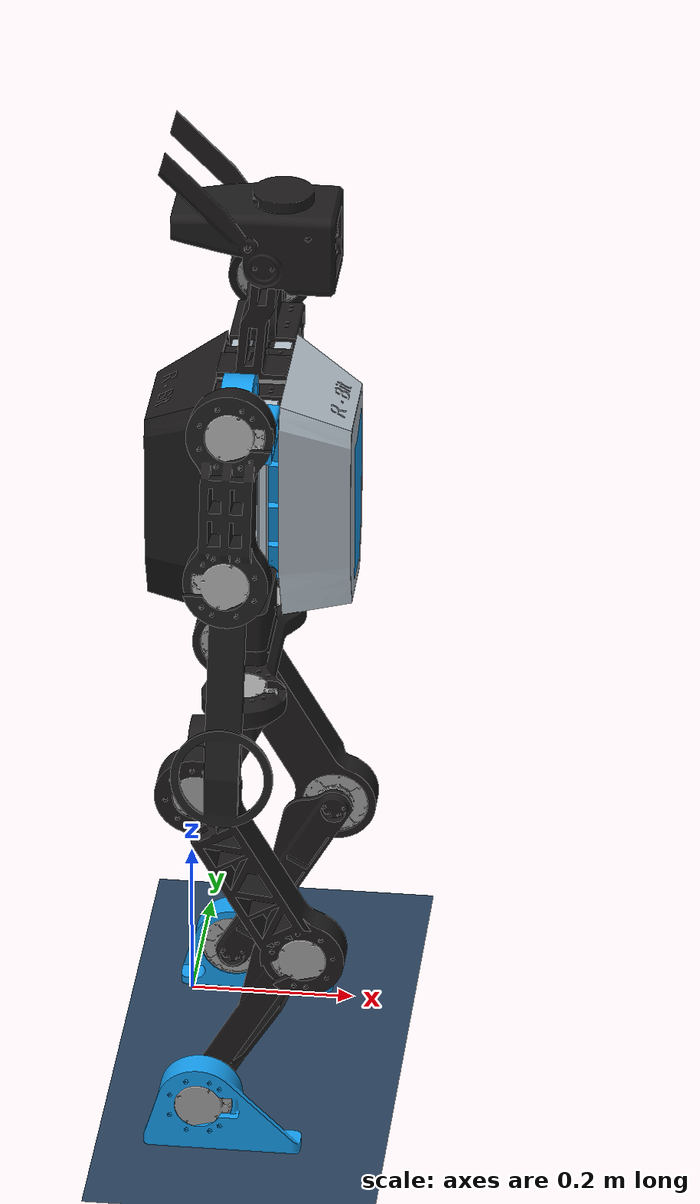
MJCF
<mujoco model="scene">
    <include file="robot.xml"/>

    <visual>
        <headlight diffuse="0.6 0.6 0.6" ambient="0.3 0.3 0.3" specular="0 0 0" />
        <rgba haze="0.15 0.25 0.35 1" />
        <global azimuth="160" elevation="-20" />
    </visual>

    <asset>
        <texture type="skybox" builtin="gradient" rgb1="0.3 0.5 0.7" rgb2="0 0 0" width="512"
            height="3072" />
        <texture type="2d" name="groundplane" builtin="checker" mark="edge" rgb1="0.2 0.3 0.4"
            rgb2="0.1 0.2 0.3"
            markrgb="0.8 0.8 0.8" width="300" height="300" />
        <material name="groundplane" texture="groundplane" texuniform="true" texrepeat="5 5"
            reflectance="0.2" />
    </asset>

    <worldbody>
        <light pos="0 0 3.5" dir="0 0 -1" directional="true" />
        <geom name="floor" size="0 0 0.05" pos="0 0 0" type="plane" material="groundplane" />
    </worldbody>
</mujoco>

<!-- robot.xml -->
<!-- Generated using onshape-to-robot -->
<!-- Onshape document_id: ed03cf36064484f045f11029 / workspace_id: 3c0f314be41cfc1e0a6a4e37 -->
<mujoco model="rabbit_humanoid">
  <compiler angle="radian" meshdir="assets" autolimits="true"/>
  <default>
    <default class="rabbit_humanoid">
      <joint frictionloss="0.1" armature="0.005"/>
      <position kp="20" dampratio="1"/>
      <default class="visual">
        <geom type="mesh" contype="0" conaffinity="0" group="2"/>
      </default>
      <default class="collision">
        <geom group="3"/>
      </default>
    </default>
  </default>
  <worldbody>
  <camera name="nice_robot_view" pos="2.476 -2.358 1.174" xyaxes="0.685 0.728 0.000 -0.211 0.199 0.957"/>
    <!-- Link torso -->
    <body name="torso" pos="0 0 0" quat="1 0 0 0" childclass="rabbit_humanoid">
      <freejoint name="torso_freejoint"/>
      <inertial pos="0.102186 -0.163702 0.929631" mass="3.5" fullinertia="0.138287 0.0999829 0.0488135 9.85582e-05 -0.00364902 0.000208347"/>
      <!-- Part rbitbase -->
      <geom type="mesh" class="visual" pos="-0.101015 -0.161473 0.625697" quat="0.70701 0 0 0.707203" mesh="rbitbase" material="rbitbase_material"/>
      <geom type="mesh" class="collision" pos="-0.101015 -0.161473 0.625697" quat="0.70701 0 0 0.707203" mesh="rbitbase" material="rbitbase_material"/>
      <!-- Part rbitbase_2 -->
      <geom type="mesh" class="visual" pos="-0.0976243 -0.166266 0.626605" quat="0.70701 0 0 0.707203" mesh="rbitbase__2" material="rbitbase__2_material"/>
      <geom type="mesh" class="collision" pos="-0.0976243 -0.166266 0.626605" quat="0.70701 0 0 0.707203" mesh="rbitbase__2" material="rbitbase__2_material"/>
      <!-- Part rbitbase_3 -->
      <geom type="mesh" class="visual" pos="-0.101015 -0.161473 0.625697" quat="0.70701 0 0 0.707203" mesh="rbitbase__3" material="rbitbase__3_material"/>
      <geom type="mesh" class="collision" pos="-0.101015 -0.161473 0.625697" quat="0.70701 0 0 0.707203" mesh="rbitbase__3" material="rbitbase__3_material"/>
      <!-- Part rbitbase_4 -->
      <geom type="mesh" class="visual" pos="-0.101016 -0.1578 0.62588" quat="0.70701 0 0 0.707203" mesh="rbitbase__4" material="rbitbase__4_material"/>
      <geom type="mesh" class="collision" pos="-0.101016 -0.1578 0.62588" quat="0.70701 0 0 0.707203" mesh="rbitbase__4" material="rbitbase__4_material"/>
      <!-- Part rbitbase_5 -->
      <geom type="mesh" class="visual" pos="-0.10114 -0.161473 0.607072" quat="0.70701 0 0 0.707203" mesh="rbitbase__5" material="rbitbase__5_material"/>
      <geom type="mesh" class="collision" pos="-0.10114 -0.161473 0.607072" quat="0.70701 0 0 0.707203" mesh="rbitbase__5" material="rbitbase__5_material"/>
      <!-- Part rbitbase_6 -->
      <geom type="mesh" class="visual" pos="-0.101166 -0.157903 0.636835" quat="0.70701 0 0 0.707203" mesh="rbitbase__6" material="rbitbase__6_material"/>
      <geom type="mesh" class="collision" pos="-0.101166 -0.157903 0.636835" quat="0.70701 0 0 0.707203" mesh="rbitbase__6" material="rbitbase__6_material"/>
      <!-- Part rbitbase_7 -->
      <geom type="mesh" class="visual" pos="-0.0972992 -0.166545 0.627325" quat="0.70701 0 0 0.707203" mesh="rbitbase__7" material="rbitbase__7_material"/>
      <geom type="mesh" class="collision" pos="-0.0972992 -0.166545 0.627325" quat="0.70701 0 0 0.707203" mesh="rbitbase__7" material="rbitbase__7_material"/>
      <!-- Part rbitbase_8 -->
      <geom type="mesh" class="visual" pos="-0.101016 -0.158099 0.625697" quat="0.70701 0 0 0.707203" mesh="rbitbase__8" material="rbitbase__8_material"/>
      <geom type="mesh" class="collision" pos="-0.101016 -0.158099 0.625697" quat="0.70701 0 0 0.707203" mesh="rbitbase__8" material="rbitbase__8_material"/>
      <!-- Part rbitbase_9 -->
      <geom type="mesh" class="visual" pos="-0.101015 -0.161473 0.626216" quat="0.70701 0 0 0.707203" mesh="rbitbase__9" material="rbitbase__9_material"/>
      <geom type="mesh" class="collision" pos="-0.101015 -0.161473 0.626216" quat="0.70701 0 0 0.707203" mesh="rbitbase__9" material="rbitbase__9_material"/>
      <!-- Part rbitbase_10 -->
      <geom type="mesh" class="visual" pos="-0.0976243 -0.166266 0.626605" quat="0.70701 0 0 0.707203" mesh="rbitbase__10" material="rbitbase__10_material"/>
      <geom type="mesh" class="collision" pos="-0.0976243 -0.166266 0.626605" quat="0.70701 0 0 0.707203" mesh="rbitbase__10" material="rbitbase__10_material"/>
      <!-- Part rbitbase_11 -->
      <geom type="mesh" class="visual" pos="-0.100514 -0.165723 0.656947" quat="0.70701 0 0 0.707203" mesh="rbitbase__11" material="rbitbase__11_material"/>
      <geom type="mesh" class="collision" pos="-0.100514 -0.165723 0.656947" quat="0.70701 0 0 0.707203" mesh="rbitbase__11" material="rbitbase__11_material"/>
      <!-- Part rbitbase_12 -->
      <geom type="mesh" class="visual" pos="-0.10134 -0.161473 0.606772" quat="0.70701 0 0 0.707203" mesh="rbitbase__12" material="rbitbase__12_material"/>
      <geom type="mesh" class="collision" pos="-0.10134 -0.161473 0.606772" quat="0.70701 0 0 0.707203" mesh="rbitbase__12" material="rbitbase__12_material"/>
      <!-- Part rbitbase_13 -->
      <geom type="mesh" class="visual" pos="-0.101015 -0.161473 0.625697" quat="0.70701 0 0 0.707203" mesh="rbitbase__13" material="rbitbase__13_material"/>
      <geom type="mesh" class="collision" pos="-0.101015 -0.161473 0.625697" quat="0.70701 0 0 0.707203" mesh="rbitbase__13" material="rbitbase__13_material"/>
      <!-- Part rbitbase_14 -->
      <geom type="mesh" class="visual" pos="-0.0952993 -0.166118 0.627029" quat="0.70701 0 0 0.707203" mesh="rbitbase__14" material="rbitbase__14_material"/>
      <geom type="mesh" class="collision" pos="-0.0952993 -0.166118 0.627029" quat="0.70701 0 0 0.707203" mesh="rbitbase__14" material="rbitbase__14_material"/>
      <!-- Part rbitbase_15 -->
      <geom type="mesh" class="visual" pos="-0.0996243 -0.166119 0.627029" quat="0.70701 0 0 0.707203" mesh="rbitbase__15" material="rbitbase__15_material"/>
      <geom type="mesh" class="collision" pos="-0.0996243 -0.166119 0.627029" quat="0.70701 0 0 0.707203" mesh="rbitbase__15" material="rbitbase__15_material"/>
      <!-- Part rbitbase_16 -->
      <geom type="mesh" class="visual" pos="-0.101072 -0.160679 0.631341" quat="0.70701 0 0 0.707203" mesh="rbitbase__16" material="rbitbase__16_material"/>
      <geom type="mesh" class="collision" pos="-0.101072 -0.160679 0.631341" quat="0.70701 0 0 0.707203" mesh="rbitbase__16" material="rbitbase__16_material"/>
      <!-- Part rbitbase_17 -->
      <geom type="mesh" class="visual" pos="-0.101015 -0.161473 0.625697" quat="0.70701 0 0 0.707203" mesh="rbitbase__17" material="rbitbase__17_material"/>
      <geom type="mesh" class="collision" pos="-0.101015 -0.161473 0.625697" quat="0.70701 0 0 0.707203" mesh="rbitbase__17" material="rbitbase__17_material"/>
      <!-- Part rbitbase_18 -->
      <geom type="mesh" class="visual" pos="-0.10114 -0.161473 0.608072" quat="0.70701 0 0 0.707203" mesh="rbitbase__18" material="rbitbase__18_material"/>
      <geom type="mesh" class="collision" pos="-0.10114 -0.161473 0.608072" quat="0.70701 0 0 0.707203" mesh="rbitbase__18" material="rbitbase__18_material"/>
      <!-- Part rbitbase_19 -->
      <geom type="mesh" class="visual" pos="-0.151016 -0.158113 0.625697" quat="0.70701 0 0 0.707203" mesh="rbitbase__8" material="rbitbase__8_material"/>
      <geom type="mesh" class="collision" pos="-0.151016 -0.158113 0.625697" quat="0.70701 0 0 0.707203" mesh="rbitbase__8" material="rbitbase__8_material"/>
      <!-- Part rbitbase_20 -->
      <geom type="mesh" class="visual" pos="-0.0972992 -0.166545 0.627325" quat="0.70701 0 0 0.707203" mesh="rbitbase__19" material="rbitbase__19_material"/>
      <geom type="mesh" class="collision" pos="-0.0972992 -0.166545 0.627325" quat="0.70701 0 0 0.707203" mesh="rbitbase__19" material="rbitbase__19_material"/>
      <!-- Part head -->
      <geom type="mesh" class="visual" pos="-0.0995535 -0.643988 0.587228" quat="0.70701 0 0 0.707203" mesh="head" material="head_material"/>
      <geom type="mesh" class="collision" pos="-0.0995535 -0.643988 0.587228" quat="0.70701 0 0 0.707203" mesh="head" material="head_material"/>
      <!-- Part rbitbase_21 -->
      <geom type="mesh" class="visual" pos="-0.100514 -0.165723 0.636447" quat="0.70701 0 0 0.707203" mesh="rbitbase__20" material="rbitbase__20_material"/>
      <geom type="mesh" class="collision" pos="-0.100514 -0.165723 0.636447" quat="0.70701 0 0 0.707203" mesh="rbitbase__20" material="rbitbase__20_material"/>
      <!-- Link left_hip -->
      <body name="left_hip" pos="0.0969088 -0.057999 0.59873" quat="0 -0.70701 -0.707203 0">
        <!-- Joint from torso to left_hip -->
        <joint axis="0 0 1" name="LeftHipYaw" type="hinge" range="-3.14 3.14"/>
        <inertial pos="-0.000224789 -0.0185205 0.0639871" mass="0.851126" fullinertia="0.00189776 0.00173246 0.000805442 -2.51413e-07 -5.68852e-07 0.000591029"/>
        <!-- Part rbitbase_22 -->
        <geom type="mesh" class="visual" pos="-0.102946 -0.197892 -0.00886706" quat="0 1 0.00013676 -0" mesh="rbitbase__21" material="rbitbase__21_material"/>
        <geom type="mesh" class="collision" pos="-0.102946 -0.197892 -0.00886706" quat="0 1 0.00013676 -0" mesh="rbitbase__21" material="rbitbase__21_material"/>
        <!-- Part rbitbase_23 -->
        <geom type="mesh" class="visual" pos="-0.102946 -0.198028 -0.006" quat="0 1 0.00013676 -0" mesh="rbitbase__22" material="rbitbase__22_material"/>
        <geom type="mesh" class="collision" pos="-0.102946 -0.198028 -0.006" quat="0 1 0.00013676 -0" mesh="rbitbase__22" material="rbitbase__22_material"/>
        <!-- Part rbitbase_24 -->
        <geom type="mesh" class="visual" pos="-0.102366 -0.196105 -0.00634276" quat="0 1 0.00013676 -0" mesh="rbitbase__23" material="rbitbase__23_material"/>
        <geom type="mesh" class="collision" pos="-0.102366 -0.196105 -0.00634276" quat="0 1 0.00013676 -0" mesh="rbitbase__23" material="rbitbase__23_material"/>
        <!-- Link left_hip_bottom -->
        <body name="left_hip_bottom" pos="1.62586e-05 -0.063 0.102467" quat="0.707107 0.707107 9.67041e-05 9.67041e-05">
          <!-- Joint from left_hip to left_hip_bottom -->
          <joint axis="0 0 1" name="LeftHipRoll" type="hinge" range="-3.14 3.14"/>
          <inertial pos="0.0566615 -0.000483218 -0.0177758" mass="0.498183" fullinertia="0.000403738 0.00062857 0.000698766 -7.64066e-06 1.09494e-05 2.26764e-06"/>
          <!-- Part rbitbase_25 -->
          <geom type="mesh" class="visual" pos="-0.10342 -0.108343 0.135077" quat="0.707107 0.707107 -0 -0" mesh="rbitbase__24" material="rbitbase__24_material"/>
          <geom type="mesh" class="collision" pos="-0.10342 -0.108343 0.135077" quat="0.707107 0.707107 -0 -0" mesh="rbitbase__24" material="rbitbase__24_material"/>
          <!-- Part rbitbase_26 -->
          <geom type="mesh" class="visual" pos="-0.1 -0.108 0.134085" quat="0.707107 0.707107 -0 -0" mesh="rbitbase__25" material="rbitbase__25_material"/>
          <geom type="mesh" class="collision" pos="-0.1 -0.108 0.134085" quat="0.707107 0.707107 -0 -0" mesh="rbitbase__25" material="rbitbase__25_material"/>
          <!-- Link left_thigh -->
          <body name="left_thigh" pos="0.094 0 -0.0179152" quat="0.707107 0 -0.707107 -0">
            <!-- Joint from left_hip_bottom to left_thigh -->
            <joint axis="0 0 1" name="LeftHipPitch" type="hinge" range="-3.14 3.14"/>
            <inertial pos="-0.0923765 0.159526 0.0180697" mass="0.841915" fullinertia="0.00545214 0.00225244 0.00740326 0.00286457 0.000142736 -0.000249601"/>
            <!-- Part rbitbase_27 -->
            <geom type="mesh" class="visual" pos="0.186998 -0.0184243 0.193" quat="0.612372 0.353553 0.612372 -0.353553" mesh="rbitbase__26" material="rbitbase__26_material"/>
            <geom type="mesh" class="collision" pos="0.186998 -0.0184243 0.193" quat="0.612372 0.353553 0.612372 -0.353553" mesh="rbitbase__26" material="rbitbase__26_material"/>
            <!-- Part rbitbase_28 -->
            <geom type="mesh" class="visual" pos="0.187024 -0.018549 0.19342" quat="0.612372 0.353553 0.612372 -0.353553" mesh="rbitbase__27" material="rbitbase__27_material"/>
            <geom type="mesh" class="collision" pos="0.187024 -0.018549 0.19342" quat="0.612372 0.353553 0.612372 -0.353553" mesh="rbitbase__27" material="rbitbase__27_material"/>
            <!-- Link left_shank -->
            <body name="left_shank" pos="-0.125 0.216506 0.039" quat="0 -0.965926 0.258819 0">
              <!-- Joint from left_thigh to left_shank -->
              <joint axis="0 0 -1" name="LeftKnee" type="hinge" range="-3.14 3.14"/>
              <inertial pos="0.00112005 -0.117503 -0.00374671" mass="0.119522" fullinertia="0.000748479 3.58231e-05 0.000767785 -2.12649e-05 3.60749e-06 -3.06652e-06"/>
              <!-- Part rbitbase_29 -->
              <geom type="mesh" class="visual" pos="0.153793 0.359721 -0.15142" quat="0.5 -0.5 -0.5 -0.5" mesh="rbitbase__28" material="rbitbase__28_material"/>
              <geom type="mesh" class="collision" pos="0.153793 0.359721 -0.15142" quat="0.5 -0.5 -0.5 -0.5" mesh="rbitbase__28" material="rbitbase__28_material"/>
              <!-- Link left_foot -->
              <body name="left_foot" pos="0 -0.25 0" quat="0 1 0 0">
                <!-- Joint from left_shank to left_foot -->
                <joint axis="0 0 1" name="LeftAnkle" type="hinge" range="-3.14 3.14"/>
                <inertial pos="-0.00800841 0.00460468 -0.0178569" mass="0.584071" fullinertia="0.000453964 0.000703847 0.00103504 -9.94341e-07 -2.78871e-05 9.76065e-06"/>
                <!-- Part rbitbase_30 -->
                <geom type="mesh" class="visual" pos="0.440513 -0.447674 0.15442" quat="0.612372 0.353553 0.612372 -0.353553" mesh="rbitbase__29" material="rbitbase__29_material"/>
                <!-- Part rbitbase_31 -->
                <geom type="mesh" class="visual" pos="0.439884 -0.447638 0.154" quat="0.612372 0.353553 0.612372 -0.353553" mesh="rbitbase__30" material="rbitbase__30_material"/>
                <geom class="collision" name="left_foot_collision" type="cylinder" size="0.025 0.095" pos="-0.045981 0.019641 0.0" euler="1.5708 -1.0472 -1.0472" friction="1.0 0.005 0.0001"/>
                <site name="left_foot_site" pos="-0.045981 0.019641 0.0" size="0.025 0.095" type="cylinder" euler="1.5708 -1.0472 -1.0472" rgba="0 1 0 0"/>
              </body>
            </body>
          </body>
        </body>
      </body>
      <!-- Link right_hip -->
      <body name="right_hip" pos="0.0969668 -0.269999 0.59873" quat="0 -0.70701 -0.707203 0">
        <!-- Joint from torso to right_hip -->
        <joint axis="0 0 1" name="RightHipYaw" type="hinge" range="-3.14 3.14"/>
        <inertial pos="-0.00022479 -0.0185205 0.063457" mass="0.851126" fullinertia="0.00186663 0.00170133 0.000805442 -2.51422e-07 -5.60958e-07 0.000583687"/>
        <!-- Part rbitbase_32 -->
        <geom type="mesh" class="visual" pos="0.107634 -0.196047 -0.00734276" quat="0 -1 -0.00013676 -0" mesh="rbitbase__31" material="rbitbase__31_material"/>
        <geom type="mesh" class="collision" pos="0.107634 -0.196047 -0.00734276" quat="0 -1 -0.00013676 -0" mesh="rbitbase__31" material="rbitbase__31_material"/>
        <!-- Part rbitbase_33 -->
        <geom type="mesh" class="visual" pos="0.107054 -0.197971 -0.007" quat="0 -1 -0.00013676 -0" mesh="rbitbase__32" material="rbitbase__32_material"/>
        <geom type="mesh" class="collision" pos="0.107054 -0.197971 -0.007" quat="0 -1 -0.00013676 -0" mesh="rbitbase__32" material="rbitbase__32_material"/>
        <!-- Part rbitbase_34 -->
        <geom type="mesh" class="visual" pos="0.109054 -0.197834 -0.00886706" quat="0 -1 -0.00013676 -0" mesh="rbitbase__33" material="rbitbase__33_material"/>
        <geom type="mesh" class="collision" pos="0.109054 -0.197834 -0.00886706" quat="0 -1 -0.00013676 -0" mesh="rbitbase__33" material="rbitbase__33_material"/>
        <!-- Link right_hip_bottom -->
        <body name="right_hip_bottom" pos="1.62586e-05 -0.063 0.101467" quat="0.707107 0.707107 9.67041e-05 9.67041e-05">
          <!-- Joint from right_hip to right_hip_bottom -->
          <joint axis="0 0 1" name="RightHipRoll" type="hinge" range="-3.14 3.14"/>
          <inertial pos="-0.0566615 -0.00048322 -0.0173831" mass="0.498183" fullinertia="0.000403606 0.000628438 0.000698766 7.64067e-06 -8.02084e-06 2.06403e-06"/>
          <!-- Part rbitbase_35 -->
          <geom type="mesh" class="visual" pos="0.105 -0.109265 0.134718" quat="0.707107 0.707107 0 -0" mesh="rbitbase__34" material="rbitbase__34_material"/>
          <geom type="mesh" class="collision" pos="0.105 -0.109265 0.134718" quat="0.707107 0.707107 0 -0" mesh="rbitbase__34" material="rbitbase__34_material"/>
          <!-- Part rbitbase_36 -->
          <geom type="mesh" class="visual" pos="0.10858 -0.108343 0.135077" quat="0.707107 0.707107 0 -0" mesh="rbitbase__35" material="rbitbase__35_material"/>
          <geom type="mesh" class="collision" pos="0.10858 -0.108343 0.135077" quat="0.707107 0.707107 0 -0" mesh="rbitbase__35" material="rbitbase__35_material"/>
          <!-- Link right_thigh -->
          <body name="right_thigh" pos="-0.094 0 -0.0179152" quat="0.683013 -0.183013 -0.683013 0.183013">
            <!-- Joint from right_hip_bottom to right_thigh -->
            <joint axis="0 0 1" name="RightHipPitch" type="hinge" range="-3.14 3.14"/>
            <inertial pos="-1.27715e-05 0.184282 -0.0180697" mass="0.841915" fullinertia="0.0071263 0.000571669 0.00739665 3.42754e-05 1.81097e-06 0.000287361"/>
            <!-- Part rbitbase_37 -->
            <geom type="mesh" class="visual" pos="0.153042 -0.109455 -0.19858" quat="0.5 0.5 0.5 -0.5" mesh="rbitbase__36" material="rbitbase__36_material"/>
            <geom type="mesh" class="collision" pos="0.153042 -0.109455 -0.19858" quat="0.5 0.5 0.5 -0.5" mesh="rbitbase__36" material="rbitbase__36_material"/>
            <!-- Part rbitbase_38 -->
            <geom type="mesh" class="visual" pos="0.153243 -0.109614 -0.198" quat="0.5 0.5 0.5 -0.5" mesh="rbitbase__37" material="rbitbase__37_material"/>
            <geom type="mesh" class="collision" pos="0.153243 -0.109614 -0.198" quat="0.5 0.5 0.5 -0.5" mesh="rbitbase__37" material="rbitbase__37_material"/>
            <!-- Link right_shank -->
            <body name="right_shank" pos="-0 0.25 -0.039" quat="1 -0 -0 0">
              <!-- Joint from right_thigh to right_shank -->
              <joint axis="0 0 1" name="RightKnee" type="hinge" range="-3.14 3.14"/>
              <inertial pos="0.102328 0.0577874 -0.00374299" mass="0.119684" fullinertia="0.000232416 0.000551924 0.000767819 -0.000319236 4.45711e-06 -1.59286e-06"/>
              <!-- Part rbitbase_39 -->
              <geom type="mesh" class="visual" pos="-0.234513 -0.313247 -0.15842" quat="0.183013 0.683013 0.183013 -0.683013" mesh="rbitbase__38" material="rbitbase__38_material"/>
              <geom type="mesh" class="collision" pos="-0.234513 -0.313247 -0.15842" quat="0.183013 0.683013 0.183013 -0.683013" mesh="rbitbase__38" material="rbitbase__38_material"/>
              <!-- Link right_foot -->
              <body name="right_foot" pos="0.216506 0.125 0" quat="0 0.965926 -0.258819 -0">
                <!-- Joint from right_shank to right_foot -->
                <joint axis="0 0 -1" name="RightAnkle" type="hinge" range="-3.14 3.14"/>
                <inertial pos="-0.00430977 -0.00807858 -0.0178568" mass="0.584068" fullinertia="0.000514809 0.00064387 0.00103591 -0.000108907 -1.93158e-05 -2.23842e-05"/>
                <!-- Part rbitbase_40 -->
                <geom type="mesh" class="visual" pos="0.158844 0.608254 0.159" quat="0.5 -0.5 -0.5 -0.5" mesh="rbitbase__39" material="rbitbase__39_material"/>
                <!-- Part rbitbase_41 -->
                <geom type="mesh" class="visual" pos="0.158108 0.607589 0.15958" quat="0.5 -0.5 -0.5 -0.5" mesh="rbitbase__40" material="rbitbase__40_material"/>
                <geom class="collision" name="right_foot_collision" type="cylinder" size="0.025 0.095" pos="-0.03 -0.04 0.0" euler="0 1.5708 0" friction="1.0 0.005 0.0001"/>
                <site name="right_foot_site" pos="-0.03 -0.04 0.0" size="0.025 0.095" type="cylinder" euler="0 1.5708 0" rgba="0 1 0 0"/>
              </body>
            </body>
          </body>
        </body>
      </body>
      <!-- Link right_upper_hand -->
      <body name="right_upper_hand" pos="0.0939896 -0.3845 0.991378" quat="0.544 0.456594 -0.452435 0.53934">
        <!-- Joint from torso to right_upper_hand -->
        <joint axis="0 0 1" name="RightShoulderPitch" type="hinge" range="-3.14 3.14"/>
        <inertial pos="-0.138854 0.000160188 -0.0189243" mass="0.736715" fullinertia="0.000494111 0.00346767 0.00372556 -2.45881e-05 -0.000176534 -3.25737e-07"/>
        <!-- Part rbitbase_42 -->
        <geom type="mesh" class="visual" pos="-0.309902 0.195167 -0.283272" quat="0.766044 0 0.642788 -0" mesh="rbitbase__41" material="rbitbase__41_material"/>
        <geom type="mesh" class="collision" pos="-0.309902 0.195167 -0.283272" quat="0.766044 0 0.642788 -0" mesh="rbitbase__41" material="rbitbase__41_material"/>
        <!-- Part rbitbase_43 -->
        <geom type="mesh" class="visual" pos="-0.309752 0.195101 -0.284874" quat="0.766044 0 0.642788 -0" mesh="rbitbase__42" material="rbitbase__42_material"/>
        <geom type="mesh" class="collision" pos="-0.309752 0.195101 -0.284874" quat="0.766044 0 0.642788 -0" mesh="rbitbase__42" material="rbitbase__42_material"/>
        <!-- Link right_lower_hand -->
        <body name="right_lower_hand" pos="-0.18 0 -0.039" quat="1 -0 -0 0">
          <!-- Joint from right_upper_hand to right_lower_hand -->
          <joint axis="0 0 1" name="RightElbow" type="hinge" range="-3.14 3.14"/>
          <inertial pos="-0.158063 0.000829207 -0.00371414" mass="0.130241" fullinertia="4.16843e-05 0.00109853 0.00113122 5.46174e-06 3.02852e-05 -1.57146e-07"/>
          <!-- Part rbitbase_44 -->
          <geom type="mesh" class="visual" pos="-0.130649 0.210929 -0.228716" quat="0.76238 0.0227585 0.646447 0.0190966" mesh="rbitbase__43" material="rbitbase__43_material"/>
          <geom type="mesh" class="collision" pos="-0.130649 0.210929 -0.228716" quat="0.76238 0.0227585 0.646447 0.0190966" mesh="rbitbase__43" material="rbitbase__43_material"/>
          <!-- Part rbitbase_45 -->
          <geom type="mesh" class="visual" pos="-0.128024 0.197264 -0.243694" quat="0.766042 0.00167074 0.642785 -0.00199111" mesh="rbitbase__44" material="rbitbase__44_material"/>
          <geom type="mesh" class="collision" pos="-0.128024 0.197264 -0.243694" quat="0.766042 0.00167074 0.642785 -0.00199111" mesh="rbitbase__44" material="rbitbase__44_material"/>
        </body>
      </body>
      <!-- Link left_upper_hand -->
      <body name="left_upper_hand" pos="0.0938661 0.0633281 0.990917" quat="0.544 -0.456594 0.452435 0.53934">
        <!-- Joint from torso to left_upper_hand -->
        <joint axis="0 0 -1" name="LeftShoulderPitch" type="hinge" range="-3.14 3.14"/>
        <inertial pos="0.138978 0.000115061 -0.0189243" mass="0.736715" fullinertia="0.000495137 0.00347416 0.00373308 -3.55102e-05 0.000174484 4.20564e-07"/>
        <!-- Part rbitbase_46 -->
        <geom type="mesh" class="visual" pos="0.315227 0.19516 -0.282747" quat="0.766044 0 -0.642788 0" mesh="rbitbase__45" material="rbitbase__45_material"/>
        <geom type="mesh" class="collision" pos="0.315227 0.19516 -0.282747" quat="0.766044 0 -0.642788 0" mesh="rbitbase__45" material="rbitbase__45_material"/>
        <!-- Part rbitbase_47 -->
        <geom type="mesh" class="visual" pos="0.314913 0.195849 -0.282746" quat="0.766044 0 -0.642788 0" mesh="rbitbase__46" material="rbitbase__46_material"/>
        <geom type="mesh" class="collision" pos="0.314913 0.195849 -0.282746" quat="0.766044 0 -0.642788 0" mesh="rbitbase__46" material="rbitbase__46_material"/>
        <!-- Link left_lower_hand -->
        <body name="left_lower_hand" pos="0.18 0 -0.039" quat="1 0 -0 0">
          <!-- Joint from left_upper_hand to left_lower_hand -->
          <joint axis="0 0 -1" name="LeftElbow" type="hinge" range="-3.14 3.14"/>
          <inertial pos="0.158065 -7.52222e-06 -0.00371414" mass="0.130241" fullinertia="4.16561e-05 0.00109856 0.00113122 -3.2394e-08 -3.02856e-05 -2.91e-10"/>
          <!-- Part rbitbase_48 -->
          <geom type="mesh" class="visual" pos="0.136267 0.194565 -0.24111" quat="0.766044 0 -0.642788 0" mesh="rbitbase__47" material="rbitbase__47_material"/>
          <geom type="mesh" class="collision" pos="0.136267 0.194565 -0.24111" quat="0.766044 0 -0.642788 0" mesh="rbitbase__47" material="rbitbase__47_material"/>
          <!-- Part rbitbase_49 -->
          <geom type="mesh" class="visual" pos="0.137999 0.195052 -0.237894" quat="0.766044 0 -0.642788 0" mesh="rbitbase__48" material="rbitbase__48_material"/>
          <geom type="mesh" class="collision" pos="0.137999 0.195052 -0.237894" quat="0.766044 0 -0.642788 0" mesh="rbitbase__48" material="rbitbase__48_material"/>
        </body>
      </body>
    </body>
  </worldbody>

  <asset>
    <mesh file="rbitbase__16.stl"/>
    <mesh file="rbitbase__31.stl"/>
    <mesh file="rbitbase__32.stl"/>
    <mesh file="rbitbase__10.stl"/>
    <mesh file="rbitbase__39.stl"/>
    <mesh file="rbitbase__5.stl"/>
    <mesh file="rbitbase__30.stl"/>
    <mesh file="rbitbase__38.stl"/>
    <mesh file="rbitbase__17.stl"/>
    <mesh file="rbitbase__22.stl"/>
    <mesh file="rbitbase__44.stl"/>
    <mesh file="rbitbase__2.stl"/>
    <mesh file="rbitbase__3.stl"/>
    <mesh file="rbitbase__14.stl"/>
    <mesh file="rbitbase__35.stl"/>
    <mesh file="rbitbase__33.stl"/>
    <mesh file="rbitbase__15.stl"/>
    <mesh file="rbitbase__9.stl"/>
    <mesh file="head.stl"/>
    <mesh file="rbitbase__18.stl"/>
    <mesh file="rbitbase__36.stl"/>
    <mesh file="rbitbase__41.stl"/>
    <mesh file="rbitbase__28.stl"/>
    <mesh file="rbitbase__6.stl"/>
    <mesh file="rbitbase__11.stl"/>
    <mesh file="rbitbase__48.stl"/>
    <mesh file="rbitbase__20.stl"/>
    <mesh file="rbitbase__13.stl"/>
    <mesh file="rbitbase__23.stl"/>
    <mesh file="rbitbase.stl"/>
    <mesh file="rbitbase__26.stl"/>
    <mesh file="rbitbase__34.stl"/>
    <mesh file="rbitbase__37.stl"/>
    <mesh file="rbitbase__21.stl"/>
    <mesh file="rbitbase__24.stl"/>
    <mesh file="rbitbase__42.stl"/>
    <mesh file="rbitbase__46.stl"/>
    <mesh file="rbitbase__43.stl"/>
    <mesh file="rbitbase__12.stl"/>
    <mesh file="rbitbase__4.stl"/>
    <mesh file="rbitbase__27.stl"/>
    <mesh file="rbitbase__45.stl"/>
    <mesh file="rbitbase__40.stl"/>
    <mesh file="rbitbase__47.stl"/>
    <mesh file="rbitbase__8.stl"/>
    <mesh file="rbitbase__25.stl"/>
    <mesh file="rbitbase__7.stl"/>
    <mesh file="rbitbase__19.stl"/>
    <mesh file="rbitbase__29.stl"/>
    <material name="rbitbase_material" rgba="0.109804 0.101961 0.101961 1"/>
    <material name="rbitbase__2_material" rgba="0.0823529 0.615686 0.933333 1"/>
    <material name="rbitbase__3_material" rgba="0.109804 0.101961 0.101961 1"/>
    <material name="rbitbase__4_material" rgba="0.0823529 0.615686 0.933333 1"/>
    <material name="rbitbase__5_material" rgba="0.109804 0.101961 0.101961 1"/>
    <material name="rbitbase__6_material" rgba="0.627451 0.627451 0.627451 1"/>
    <material name="rbitbase__7_material" rgba="0.109804 0.101961 0.101961 1"/>
    <material name="rbitbase__8_material" rgba="0.713725 0.760784 0.8 1"/>
    <material name="rbitbase__9_material" rgba="0.109804 0.101961 0.101961 1"/>
    <material name="rbitbase__10_material" rgba="0.713725 0.760784 0.8 1"/>
    <material name="rbitbase__11_material" rgba="0.627451 0.627451 0.627451 1"/>
    <material name="rbitbase__12_material" rgba="0.109804 0.101961 0.101961 1"/>
    <material name="rbitbase__13_material" rgba="0.713725 0.760784 0.8 1"/>
    <material name="rbitbase__14_material" rgba="0.713725 0.760784 0.8 1"/>
    <material name="rbitbase__15_material" rgba="0.109804 0.101961 0.101961 1"/>
    <material name="rbitbase__16_material" rgba="0.627451 0.627451 0.627451 1"/>
    <material name="rbitbase__17_material" rgba="0.713725 0.760784 0.8 1"/>
    <material name="rbitbase__18_material" rgba="0.109804 0.101961 0.101961 1"/>
    <material name="rbitbase__19_material" rgba="0.109804 0.101961 0.101961 1"/>
    <material name="head_material" rgba="0.109804 0.101961 0.101961 1"/>
    <material name="rbitbase__20_material" rgba="0.109804 0.101961 0.101961 1"/>
    <material name="rbitbase__21_material" rgba="0.627451 0.627451 0.627451 1"/>
    <material name="rbitbase__22_material" rgba="0.627451 0.627451 0.627451 1"/>
    <material name="rbitbase__23_material" rgba="0.109804 0.101961 0.101961 1"/>
    <material name="rbitbase__24_material" rgba="0.109804 0.101961 0.101961 1"/>
    <material name="rbitbase__25_material" rgba="0.627451 0.627451 0.627451 1"/>
    <material name="rbitbase__26_material" rgba="0.627451 0.627451 0.627451 1"/>
    <material name="rbitbase__27_material" rgba="0.109804 0.101961 0.101961 1"/>
    <material name="rbitbase__28_material" rgba="0.109804 0.101961 0.101961 1"/>
    <material name="rbitbase__29_material" rgba="0.0823529 0.615686 0.933333 1"/>
    <material name="rbitbase__30_material" rgba="0.627451 0.627451 0.627451 1"/>
    <material name="rbitbase__31_material" rgba="0.109804 0.101961 0.101961 1"/>
    <material name="rbitbase__32_material" rgba="0.627451 0.627451 0.627451 1"/>
    <material name="rbitbase__33_material" rgba="0.627451 0.627451 0.627451 1"/>
    <material name="rbitbase__34_material" rgba="0.627451 0.627451 0.627451 1"/>
    <material name="rbitbase__35_material" rgba="0.109804 0.101961 0.101961 1"/>
    <material name="rbitbase__36_material" rgba="0.109804 0.101961 0.101961 1"/>
    <material name="rbitbase__37_material" rgba="0.627451 0.627451 0.627451 1"/>
    <material name="rbitbase__38_material" rgba="0.109804 0.101961 0.101961 1"/>
    <material name="rbitbase__39_material" rgba="0.627451 0.627451 0.627451 1"/>
    <material name="rbitbase__40_material" rgba="0.0823529 0.615686 0.933333 1"/>
    <material name="rbitbase__41_material" rgba="0.627451 0.627451 0.627451 1"/>
    <material name="rbitbase__42_material" rgba="0.109804 0.101961 0.101961 1"/>
    <material name="rbitbase__43_material" rgba="0.109804 0.101961 0.101961 1"/>
    <material name="rbitbase__44_material" rgba="0.109804 0.101961 0.101961 1"/>
    <material name="rbitbase__45_material" rgba="0.109804 0.101961 0.101961 1"/>
    <material name="rbitbase__46_material" rgba="0.627451 0.627451 0.627451 1"/>
    <material name="rbitbase__47_material" rgba="0.0823529 0.615686 0.933333 1"/>
    <material name="rbitbase__48_material" rgba="0.109804 0.101961 0.101961 1"/>
  </asset>

  <contact>
    <!-- Torso with everything else -->
    <exclude body1="torso" body2="left_hip"/>
    <exclude body1="torso" body2="left_hip_bottom"/>
    <exclude body1="torso" body2="left_thigh"/>
    <exclude body1="torso" body2="left_shank"/>
    <exclude body1="torso" body2="right_hip"/>
    <exclude body1="torso" body2="right_hip_bottom"/>
    <exclude body1="torso" body2="right_thigh"/>
    <exclude body1="torso" body2="right_shank"/>
    <!-- Left leg internal -->
    <exclude body1="left_hip" body2="left_hip_bottom"/>
    <exclude body1="left_hip" body2="left_thigh"/>
    <exclude body1="left_hip" body2="left_shank"/>
    <exclude body1="left_hip_bottom" body2="left_thigh"/>
    <exclude body1="left_hip_bottom" body2="left_shank"/>
    <exclude body1="left_thigh" body2="left_shank"/>
    <exclude body1="left_shank" body2="left_foot"/>

    <!-- Right leg internal -->
    <exclude body1="right_hip" body2="right_hip_bottom"/>
    <exclude body1="right_hip" body2="right_thigh"/>
    <exclude body1="right_hip" body2="right_shank"/>
    <exclude body1="right_hip" body2="right_foot"/>
    <exclude body1="right_hip_bottom" body2="right_thigh"/>
    <exclude body1="right_hip_bottom" body2="right_shank"/>
    <exclude body1="right_hip_bottom" body2="right_foot"/>
    <exclude body1="right_thigh" body2="right_shank"/>
    <exclude body1="right_thigh" body2="right_foot"/>
    <exclude body1="right_shank" body2="right_foot"/>

    <!-- Left and right legs -->
    <exclude body1="left_hip" body2="right_hip"/>
    <exclude body1="left_hip" body2="right_hip_bottom"/>
    <exclude body1="left_hip" body2="right_thigh"/>
    <exclude body1="left_hip" body2="right_shank"/>
    <exclude body1="left_hip" body2="right_foot"/>
    <exclude body1="left_hip_bottom" body2="right_hip"/>
    <exclude body1="left_hip_bottom" body2="right_hip_bottom"/>
    <exclude body1="left_hip_bottom" body2="right_thigh"/>
    <exclude body1="left_hip_bottom" body2="right_shank"/>
    <exclude body1="left_hip_bottom" body2="right_foot"/>
    <exclude body1="left_thigh" body2="right_hip"/>
    <exclude body1="left_thigh" body2="right_hip_bottom"/>
    <exclude body1="left_thigh" body2="right_thigh"/>
    <exclude body1="left_thigh" body2="right_shank"/>
    <exclude body1="left_thigh" body2="right_foot"/>
    <exclude body1="left_shank" body2="right_hip"/>
    <exclude body1="left_shank" body2="right_hip_bottom"/>
    <exclude body1="left_shank" body2="right_thigh"/>
    <exclude body1="left_shank" body2="right_shank"/>
    <exclude body1="left_shank" body2="right_foot"/>
    <exclude body1="left_foot" body2="right_hip"/>
    <exclude body1="left_foot" body2="right_hip_bottom"/>
    <exclude body1="left_foot" body2="right_thigh"/>
    <exclude body1="left_foot" body2="right_shank"/>
    <exclude body1="left_foot" body2="right_foot"/>

    <!-- Right arm internal -->
    <exclude body1="right_upper_hand" body2="right_lower_hand"/>

    <!-- Left arm internal -->
    <exclude body1="left_upper_hand" body2="left_lower_hand"/>

    <!-- Right arm with left arm -->
    <exclude body1="right_upper_hand" body2="left_upper_hand"/>
    <exclude body1="right_upper_hand" body2="left_lower_hand"/>
    <exclude body1="right_lower_hand" body2="left_upper_hand"/>
    <exclude body1="right_lower_hand" body2="left_lower_hand"/>

    <!-- Right arm with both legs -->
    <exclude body1="right_upper_hand" body2="left_hip"/>
    <exclude body1="right_upper_hand" body2="left_hip_bottom"/>
    <exclude body1="right_upper_hand" body2="left_thigh"/>
    <exclude body1="right_upper_hand" body2="left_shank"/>
    <exclude body1="right_upper_hand" body2="left_foot"/>
    <exclude body1="right_upper_hand" body2="right_hip"/>
    <exclude body1="right_upper_hand" body2="right_hip_bottom"/>
    <exclude body1="right_upper_hand" body2="right_thigh"/>
    <exclude body1="right_upper_hand" body2="right_shank"/>
    <exclude body1="right_upper_hand" body2="right_foot"/>
    <exclude body1="right_lower_hand" body2="left_hip"/>
    <exclude body1="right_lower_hand" body2="left_hip_bottom"/>
    <exclude body1="right_lower_hand" body2="left_thigh"/>
    <exclude body1="right_lower_hand" body2="left_shank"/>
    <exclude body1="right_lower_hand" body2="left_foot"/>
    <exclude body1="right_lower_hand" body2="right_hip"/>
    <exclude body1="right_lower_hand" body2="right_hip_bottom"/>
    <exclude body1="right_lower_hand" body2="right_thigh"/>
    <exclude body1="right_lower_hand" body2="right_shank"/>
    <exclude body1="right_lower_hand" body2="right_foot"/>

    <!-- Left arm with both legs -->
    <exclude body1="left_upper_hand" body2="left_hip"/>
    <exclude body1="left_upper_hand" body2="left_hip_bottom"/>
    <exclude body1="left_upper_hand" body2="left_thigh"/>
    <exclude body1="left_upper_hand" body2="left_shank"/>
    <exclude body1="left_upper_hand" body2="left_foot"/>
    <exclude body1="left_upper_hand" body2="right_hip"/>
    <exclude body1="left_upper_hand" body2="right_hip_bottom"/>
    <exclude body1="left_upper_hand" body2="right_thigh"/>
    <exclude body1="left_upper_hand" body2="right_shank"/>
    <exclude body1="left_upper_hand" body2="right_foot"/>
    <exclude body1="left_lower_hand" body2="left_hip"/>
    <exclude body1="left_lower_hand" body2="left_hip_bottom"/>
    <exclude body1="left_lower_hand" body2="left_thigh"/>
    <exclude body1="left_lower_hand" body2="left_shank"/>
    <exclude body1="left_lower_hand" body2="left_foot"/>
    <exclude body1="left_lower_hand" body2="right_hip"/>
    <exclude body1="left_lower_hand" body2="right_hip_bottom"/>
    <exclude body1="left_lower_hand" body2="right_thigh"/>
    <exclude body1="left_lower_hand" body2="right_shank"/>
    <exclude body1="left_lower_hand" body2="right_foot"/>
    <exclude body1="left_hip" body2="left_foot"/>
    <exclude body1="left_hip_bottom" body2="left_foot"/>
    <exclude body1="left_thigh" body2="left_foot"/>
    <exclude body1="torso" body2="left_foot"/>
    <exclude body1="torso" body2="right_foot"/>
  </contact>

  <sensor>
    <touch name="sensor_l_foot" site="left_foot_site"/>
    <touch name="sensor_r_foot" site="right_foot_site"/>
  </sensor>

  <equality/>
</mujoco>
